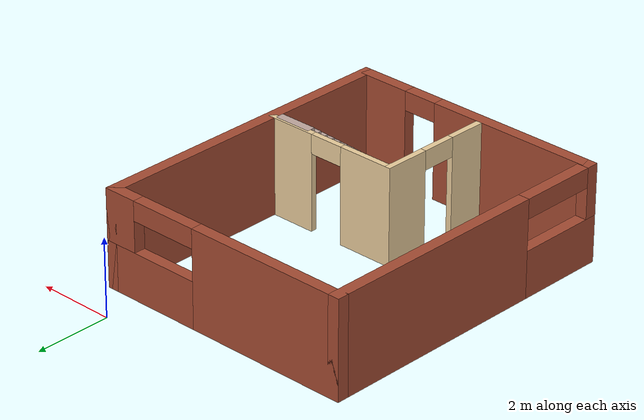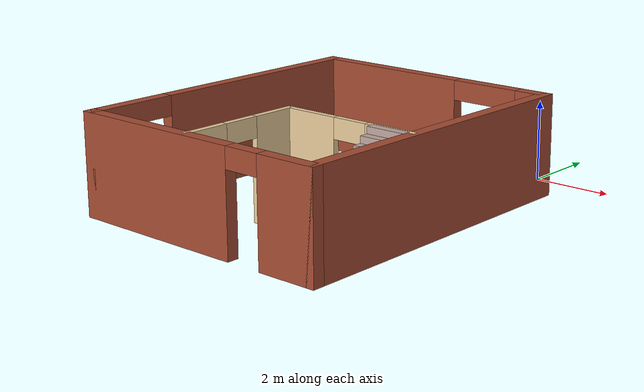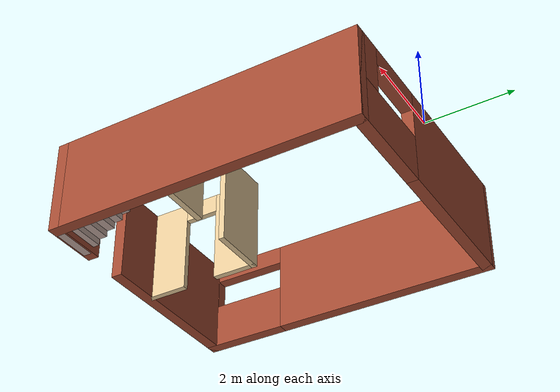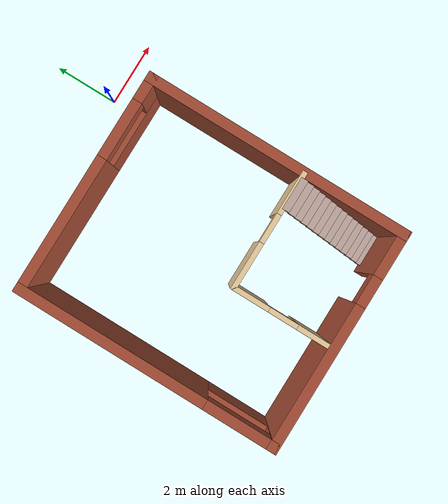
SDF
<?xml version='1.0'?>
<sdf version='1.6'>
  <model name='structure'>
    <pose frame=''>-2.54 -5.1115 0 0 -0 0</pose>
    <link name='Stairs_0'>
      <visual name='Stairs_0_Visual_0'>
        <pose frame=''>2.70286 -4.01169 0.083333 0 -0 -3.14159</pose>
        <geometry>
          <box>
            <size>1 0.2182 0.166667</size>
          </box>
        </geometry>
        <material>
          <script>
            <uri>file://media/materials/scripts/gazebo.material</uri>
            <name>Gazebo/Grey</name>
          </script>
          <ambient>0.760784 0.662745 0.627451 1</ambient>
        </material>
        <meta>
          <layer>0</layer>
        </meta>
      </visual>
      <collision name='Stairs_0_Collision_0'>
        <geometry>
          <box>
            <size>1 0.2182 0.166667</size>
          </box>
        </geometry>
        <pose frame=''>2.70286 -4.01169 0.083333 0 -0 -3.14159</pose>
      </collision>
      <visual name='Stairs_0_Visual_1'>
        <pose frame=''>2.70286 -3.79349 0.25 0 -0 -3.14159</pose>
        <geometry>
          <box>
            <size>1 0.2182 0.166667</size>
          </box>
        </geometry>
        <material>
          <script>
            <uri>file://media/materials/scripts/gazebo.material</uri>
            <name>Gazebo/Grey</name>
          </script>
          <ambient>0.760784 0.662745 0.627451 1</ambient>
        </material>
        <meta>
          <layer>0</layer>
        </meta>
      </visual>
      <collision name='Stairs_0_Collision_1'>
        <geometry>
          <box>
            <size>1 0.2182 0.166667</size>
          </box>
        </geometry>
        <pose frame=''>2.70286 -3.79349 0.25 0 -0 -3.14159</pose>
      </collision>
      <visual name='Stairs_0_Visual_2'>
        <pose frame=''>2.70286 -3.57529 0.416667 0 -0 -3.14159</pose>
        <geometry>
          <box>
            <size>1 0.2182 0.166667</size>
          </box>
        </geometry>
        <material>
          <script>
            <uri>file://media/materials/scripts/gazebo.material</uri>
            <name>Gazebo/Grey</name>
          </script>
          <ambient>0.760784 0.662745 0.627451 1</ambient>
        </material>
        <meta>
          <layer>0</layer>
        </meta>
      </visual>
      <collision name='Stairs_0_Collision_2'>
        <geometry>
          <box>
            <size>1 0.2182 0.166667</size>
          </box>
        </geometry>
        <pose frame=''>2.70286 -3.57529 0.416667 0 -0 -3.14159</pose>
      </collision>
      <visual name='Stairs_0_Visual_3'>
        <pose frame=''>2.70286 -3.35709 0.583333 0 -0 -3.14159</pose>
        <geometry>
          <box>
            <size>1 0.2182 0.166667</size>
          </box>
        </geometry>
        <material>
          <script>
            <uri>file://media/materials/scripts/gazebo.material</uri>
            <name>Gazebo/Grey</name>
          </script>
          <ambient>0.760784 0.662745 0.627451 1</ambient>
        </material>
        <meta>
          <layer>0</layer>
        </meta>
      </visual>
      <collision name='Stairs_0_Collision_3'>
        <geometry>
          <box>
            <size>1 0.2182 0.166667</size>
          </box>
        </geometry>
        <pose frame=''>2.70286 -3.35709 0.583333 0 -0 -3.14159</pose>
      </collision>
      <visual name='Stairs_0_Visual_4'>
        <pose frame=''>2.70286 -3.13889 0.75 0 -0 -3.14159</pose>
        <geometry>
          <box>
            <size>1 0.2182 0.166667</size>
          </box>
        </geometry>
        <material>
          <script>
            <uri>file://media/materials/scripts/gazebo.material</uri>
            <name>Gazebo/Grey</name>
          </script>
          <ambient>0.760784 0.662745 0.627451 1</ambient>
        </material>
        <meta>
          <layer>0</layer>
        </meta>
      </visual>
      <collision name='Stairs_0_Collision_4'>
        <geometry>
          <box>
            <size>1 0.2182 0.166667</size>
          </box>
        </geometry>
        <pose frame=''>2.70286 -3.13889 0.75 0 -0 -3.14159</pose>
      </collision>
      <visual name='Stairs_0_Visual_5'>
        <pose frame=''>2.70286 -2.92069 0.916667 0 -0 -3.14159</pose>
        <geometry>
          <box>
            <size>1 0.2182 0.166667</size>
          </box>
        </geometry>
        <material>
          <script>
            <uri>file://media/materials/scripts/gazebo.material</uri>
            <name>Gazebo/Grey</name>
          </script>
          <ambient>0.760784 0.662745 0.627451 1</ambient>
        </material>
        <meta>
          <layer>0</layer>
        </meta>
      </visual>
      <collision name='Stairs_0_Collision_5'>
        <geometry>
          <box>
            <size>1 0.2182 0.166667</size>
          </box>
        </geometry>
        <pose frame=''>2.70286 -2.92069 0.916667 0 -0 -3.14159</pose>
      </collision>
      <visual name='Stairs_0_Visual_6'>
        <pose frame=''>2.70286 -2.70249 1.08333 0 -0 -3.14159</pose>
        <geometry>
          <box>
            <size>1 0.2182 0.166667</size>
          </box>
        </geometry>
        <material>
          <script>
            <uri>file://media/materials/scripts/gazebo.material</uri>
            <name>Gazebo/Grey</name>
          </script>
          <ambient>0.760784 0.662745 0.627451 1</ambient>
        </material>
        <meta>
          <layer>0</layer>
        </meta>
      </visual>
      <collision name='Stairs_0_Collision_6'>
        <geometry>
          <box>
            <size>1 0.2182 0.166667</size>
          </box>
        </geometry>
        <pose frame=''>2.70286 -2.70249 1.08333 0 -0 -3.14159</pose>
      </collision>
      <visual name='Stairs_0_Visual_7'>
        <pose frame=''>2.70286 -2.48429 1.25 0 -0 -3.14159</pose>
        <geometry>
          <box>
            <size>1 0.2182 0.166667</size>
          </box>
        </geometry>
        <material>
          <script>
            <uri>file://media/materials/scripts/gazebo.material</uri>
            <name>Gazebo/Grey</name>
          </script>
          <ambient>0.760784 0.662745 0.627451 1</ambient>
        </material>
        <meta>
          <layer>0</layer>
        </meta>
      </visual>
      <collision name='Stairs_0_Collision_7'>
        <geometry>
          <box>
            <size>1 0.2182 0.166667</size>
          </box>
        </geometry>
        <pose frame=''>2.70286 -2.48429 1.25 0 -0 -3.14159</pose>
      </collision>
      <visual name='Stairs_0_Visual_8'>
        <pose frame=''>2.70286 -2.26609 1.41667 0 -0 -3.14159</pose>
        <geometry>
          <box>
            <size>1 0.2182 0.166667</size>
          </box>
        </geometry>
        <material>
          <script>
            <uri>file://media/materials/scripts/gazebo.material</uri>
            <name>Gazebo/Grey</name>
          </script>
          <ambient>0.760784 0.662745 0.627451 1</ambient>
        </material>
        <meta>
          <layer>0</layer>
        </meta>
      </visual>
      <collision name='Stairs_0_Collision_8'>
        <geometry>
          <box>
            <size>1 0.2182 0.166667</size>
          </box>
        </geometry>
        <pose frame=''>2.70286 -2.26609 1.41667 0 -0 -3.14159</pose>
      </collision>
      <visual name='Stairs_0_Visual_9'>
        <pose frame=''>2.70286 -2.04789 1.58333 0 -0 -3.14159</pose>
        <geometry>
          <box>
            <size>1 0.2182 0.166667</size>
          </box>
        </geometry>
        <material>
          <script>
            <uri>file://media/materials/scripts/gazebo.material</uri>
            <name>Gazebo/Grey</name>
          </script>
          <ambient>0.760784 0.662745 0.627451 1</ambient>
        </material>
        <meta>
          <layer>0</layer>
        </meta>
      </visual>
      <collision name='Stairs_0_Collision_9'>
        <geometry>
          <box>
            <size>1 0.2182 0.166667</size>
          </box>
        </geometry>
        <pose frame=''>2.70286 -2.04789 1.58333 0 -0 -3.14159</pose>
      </collision>
      <visual name='Stairs_0_Visual_10'>
        <pose frame=''>2.70286 -1.82969 1.75 0 -0 -3.14159</pose>
        <geometry>
          <box>
            <size>1 0.2182 0.166667</size>
          </box>
        </geometry>
        <material>
          <script>
            <uri>file://media/materials/scripts/gazebo.material</uri>
            <name>Gazebo/Grey</name>
          </script>
          <ambient>0.760784 0.662745 0.627451 1</ambient>
        </material>
        <meta>
          <layer>0</layer>
        </meta>
      </visual>
      <collision name='Stairs_0_Collision_10'>
        <geometry>
          <box>
            <size>1 0.2182 0.166667</size>
          </box>
        </geometry>
        <pose frame=''>2.70286 -1.82969 1.75 0 -0 -3.14159</pose>
      </collision>
      <visual name='Stairs_0_Visual_11'>
        <pose frame=''>2.70286 -1.61149 1.91667 0 -0 -3.14159</pose>
        <geometry>
          <box>
            <size>1 0.2182 0.166667</size>
          </box>
        </geometry>
        <material>
          <script>
            <uri>file://media/materials/scripts/gazebo.material</uri>
            <name>Gazebo/Grey</name>
          </script>
          <ambient>0.760784 0.662745 0.627451 1</ambient>
        </material>
        <meta>
          <layer>0</layer>
        </meta>
      </visual>
      <collision name='Stairs_0_Collision_11'>
        <geometry>
          <box>
            <size>1 0.2182 0.166667</size>
          </box>
        </geometry>
        <pose frame=''>2.70286 -1.61149 1.91667 0 -0 -3.14159</pose>
      </collision>
      <visual name='Stairs_0_Visual_12'>
        <pose frame=''>2.70286 -1.39329 2.08333 0 -0 -3.14159</pose>
        <geometry>
          <box>
            <size>1 0.2182 0.166667</size>
          </box>
        </geometry>
        <material>
          <script>
            <uri>file://media/materials/scripts/gazebo.material</uri>
            <name>Gazebo/Grey</name>
          </script>
          <ambient>0.760784 0.662745 0.627451 1</ambient>
        </material>
        <meta>
          <layer>0</layer>
        </meta>
      </visual>
      <collision name='Stairs_0_Collision_12'>
        <geometry>
          <box>
            <size>1 0.2182 0.166667</size>
          </box>
        </geometry>
        <pose frame=''>2.70286 -1.39329 2.08333 0 -0 -3.14159</pose>
      </collision>
      <visual name='Stairs_0_Visual_13'>
        <pose frame=''>2.70286 -1.17509 2.25 0 -0 -3.14159</pose>
        <geometry>
          <box>
            <size>1 0.2182 0.166667</size>
          </box>
        </geometry>
        <material>
          <script>
            <uri>file://media/materials/scripts/gazebo.material</uri>
            <name>Gazebo/Grey</name>
          </script>
          <ambient>0.760784 0.662745 0.627451 1</ambient>
        </material>
        <meta>
          <layer>0</layer>
        </meta>
      </visual>
      <collision name='Stairs_0_Collision_13'>
        <geometry>
          <box>
            <size>1 0.2182 0.166667</size>
          </box>
        </geometry>
        <pose frame=''>2.70286 -1.17509 2.25 0 -0 -3.14159</pose>
      </collision>
      <visual name='Stairs_0_Visual_14'>
        <pose frame=''>2.70286 -0.956894 2.41667 0 -0 -3.14159</pose>
        <geometry>
          <box>
            <size>1 0.2182 0.166667</size>
          </box>
        </geometry>
        <material>
          <script>
            <uri>file://media/materials/scripts/gazebo.material</uri>
            <name>Gazebo/Grey</name>
          </script>
          <ambient>0.760784 0.662745 0.627451 1</ambient>
        </material>
        <meta>
          <layer>0</layer>
        </meta>
      </visual>
      <collision name='Stairs_0_Collision_14'>
        <geometry>
          <box>
            <size>1 0.2182 0.166667</size>
          </box>
        </geometry>
        <pose frame=''>2.70286 -0.956894 2.41667 0 -0 -3.14159</pose>
      </collision>
    </link>
    <link name='Wall_0'>
      <pose frame=''>0 4.0085 0 0 -0 0</pose>
      <visual name='Wall_0_Visual_0'>
        <pose frame=''>-1.33829 0 1.25 0 -0 0</pose>
        <geometry>
          <box>
            <size>4.32341 0.3 2.5</size>
          </box>
        </geometry>
        <material>
          <script>
            <uri>file://media/materials/scripts/gazebo.material</uri>
            <name>Gazebo/Bricks</name>
          </script>
          <ambient>1 0.764706 0.305882 1</ambient>
        </material>
        <meta>
          <layer>0</layer>
        </meta>
      </visual>
      <collision name='Wall_0_Collision_0'>
        <geometry>
          <box>
            <size>4.32341 0.3 2.5</size>
          </box>
        </geometry>
        <pose frame=''>-1.33829 0 1.25 0 -0 0</pose>
      </collision>
      <visual name='Wall_0_Visual_1'>
        <pose frame=''>2.16171 0 0.6 0 -0 0</pose>
        <geometry>
          <box>
            <size>2.67659 0.3 1.2</size>
          </box>
        </geometry>
        <material>
          <script>
            <uri>file://media/materials/scripts/gazebo.material</uri>
            <name>Gazebo/Bricks</name>
          </script>
          <ambient>1 0.764706 0.305882 1</ambient>
        </material>
        <meta>
          <layer>0</layer>
        </meta>
      </visual>
      <collision name='Wall_0_Collision_1'>
        <geometry>
          <box>
            <size>2.67659 0.3 1.2</size>
          </box>
        </geometry>
        <pose frame=''>2.16171 0 0.6 0 -0 0</pose>
      </collision>
      <visual name='Wall_0_Visual_2'>
        <pose frame=''>3.06171 0 1.85 0 -0 0</pose>
        <geometry>
          <box>
            <size>0.876586 0.3 1.3</size>
          </box>
        </geometry>
        <material>
          <script>
            <uri>file://media/materials/scripts/gazebo.material</uri>
            <name>Gazebo/Bricks</name>
          </script>
          <ambient>1 0.764706 0.305882 1</ambient>
        </material>
        <meta>
          <layer>0</layer>
        </meta>
      </visual>
      <collision name='Wall_0_Collision_2'>
        <geometry>
          <box>
            <size>0.876586 0.3 1.3</size>
          </box>
        </geometry>
        <pose frame=''>3.06171 0 1.85 0 -0 0</pose>
      </collision>
      <visual name='Wall_0_Visual_3'>
        <pose frame=''>1.72341 0 2.25 0 -0 0</pose>
        <geometry>
          <box>
            <size>1.8 0.3 0.5</size>
          </box>
        </geometry>
        <material>
          <script>
            <uri>file://media/materials/scripts/gazebo.material</uri>
            <name>Gazebo/Bricks</name>
          </script>
          <ambient>1 0.764706 0.305882 1</ambient>
        </material>
        <meta>
          <layer>0</layer>
        </meta>
      </visual>
      <collision name='Wall_0_Collision_3'>
        <geometry>
          <box>
            <size>1.8 0.3 0.5</size>
          </box>
        </geometry>
        <pose frame=''>1.72341 0 2.25 0 -0 0</pose>
      </collision>
    </link>
    <link name='Wall_11'>
      <collision name='Wall_11_Collision'>
        <geometry>
          <box>
            <size>8.317 0.3 2.5</size>
          </box>
        </geometry>
        <pose frame=''>0 0 1.25 0 -0 0</pose>
      </collision>
      <visual name='Wall_11_Visual'>
        <pose frame=''>0 0 1.25 0 -0 0</pose>
        <geometry>
          <box>
            <size>8.317 0.3 2.5</size>
          </box>
        </geometry>
        <material>
          <script>
            <uri>file://media/materials/scripts/gazebo.material</uri>
            <name>Gazebo/Bricks</name>
          </script>
          <ambient>1 0.764706 0.305882 1</ambient>
        </material>
        <meta>
          <layer>0</layer>
        </meta>
      </visual>
      <pose frame=''>3.35 0 0 0 0 -1.5708</pose>
    </link>
    <link name='Wall_13'>
      <pose frame=''>-0.288 -2.4125 0 0 -0 1.5708</pose>
      <visual name='Wall_13_Visual_0'>
        <pose frame=''>-1.04294 0 1.25 0 -0 0</pose>
        <geometry>
          <box>
            <size>1.16413 0.15 2.5</size>
          </box>
        </geometry>
        <material>
          <script>
            <uri>file://media/materials/scripts/gazebo.material</uri>
            <name>Gazebo/Grey</name>
          </script>
          <ambient>0.921569 0.807843 0.615686 1</ambient>
        </material>
        <meta>
          <layer>0</layer>
        </meta>
      </visual>
      <collision name='Wall_13_Collision_0'>
        <geometry>
          <box>
            <size>1.16413 0.15 2.5</size>
          </box>
        </geometry>
        <pose frame=''>-1.04294 0 1.25 0 -0 0</pose>
      </collision>
      <visual name='Wall_13_Visual_1'>
        <pose frame=''>1.03206 0 1.25 0 -0 0</pose>
        <geometry>
          <box>
            <size>1.18587 0.15 2.5</size>
          </box>
        </geometry>
        <material>
          <script>
            <uri>file://media/materials/scripts/gazebo.material</uri>
            <name>Gazebo/Grey</name>
          </script>
          <ambient>0.921569 0.807843 0.615686 1</ambient>
        </material>
        <meta>
          <layer>0</layer>
        </meta>
      </visual>
      <collision name='Wall_13_Collision_1'>
        <geometry>
          <box>
            <size>1.18587 0.15 2.5</size>
          </box>
        </geometry>
        <pose frame=''>1.03206 0 1.25 0 -0 0</pose>
      </collision>
      <visual name='Wall_13_Visual_2'>
        <pose frame=''>-0.010874 0 2.25 0 -0 0</pose>
        <geometry>
          <box>
            <size>0.9 0.15 0.5</size>
          </box>
        </geometry>
        <material>
          <script>
            <uri>file://media/materials/scripts/gazebo.material</uri>
            <name>Gazebo/Grey</name>
          </script>
          <ambient>0.921569 0.807843 0.615686 1</ambient>
        </material>
        <meta>
          <layer>0</layer>
        </meta>
      </visual>
      <collision name='Wall_13_Collision_2'>
        <geometry>
          <box>
            <size>0.9 0.15 0.5</size>
          </box>
        </geometry>
        <pose frame=''>-0.010874 0 2.25 0 -0 0</pose>
      </collision>
    </link>
    <link name='Wall_14'>
      <pose frame=''>1.512 -0.8625 0 0 -0 0</pose>
      <visual name='Wall_14_Visual_0'>
        <pose frame=''>-1.12678 0 1.25 0 -0 0</pose>
        <geometry>
          <box>
            <size>1.49644 0.15 2.5</size>
          </box>
        </geometry>
        <material>
          <script>
            <uri>file://media/materials/scripts/gazebo.material</uri>
            <name>Gazebo/Grey</name>
          </script>
          <ambient>0.921569 0.807843 0.615686 1</ambient>
        </material>
        <meta>
          <layer>0</layer>
        </meta>
      </visual>
      <collision name='Wall_14_Collision_0'>
        <geometry>
          <box>
            <size>1.49644 0.15 2.5</size>
          </box>
        </geometry>
        <pose frame=''>-1.12678 0 1.25 0 -0 0</pose>
      </collision>
      <visual name='Wall_14_Visual_1'>
        <pose frame=''>1.19822 0 1.25 0 -0 0</pose>
        <geometry>
          <box>
            <size>1.35356 0.15 2.5</size>
          </box>
        </geometry>
        <material>
          <script>
            <uri>file://media/materials/scripts/gazebo.material</uri>
            <name>Gazebo/Grey</name>
          </script>
          <ambient>0.921569 0.807843 0.615686 1</ambient>
        </material>
        <meta>
          <layer>0</layer>
        </meta>
      </visual>
      <collision name='Wall_14_Collision_1'>
        <geometry>
          <box>
            <size>1.35356 0.15 2.5</size>
          </box>
        </geometry>
        <pose frame=''>1.19822 0 1.25 0 -0 0</pose>
      </collision>
      <visual name='Wall_14_Visual_2'>
        <pose frame=''>0.071437 0 2.25 0 -0 0</pose>
        <geometry>
          <box>
            <size>0.9 0.15 0.5</size>
          </box>
        </geometry>
        <material>
          <script>
            <uri>file://media/materials/scripts/gazebo.material</uri>
            <name>Gazebo/Grey</name>
          </script>
          <ambient>0.921569 0.807843 0.615686 1</ambient>
        </material>
        <meta>
          <layer>0</layer>
        </meta>
      </visual>
      <collision name='Wall_14_Collision_2'>
        <geometry>
          <box>
            <size>0.9 0.15 0.5</size>
          </box>
        </geometry>
        <pose frame=''>0.071437 0 2.25 0 -0 0</pose>
      </collision>
    </link>
    <link name='Wall_4'>
      <pose frame=''>-3.35 0 0 0 0 -1.5708</pose>
      <visual name='Wall_4_Visual_0'>
        <pose frame=''>-1.15907 0 1.25 0 -0 0</pose>
        <geometry>
          <box>
            <size>5.99886 0.3 2.5</size>
          </box>
        </geometry>
        <material>
          <script>
            <uri>file://media/materials/scripts/gazebo.material</uri>
            <name>Gazebo/Bricks</name>
          </script>
          <ambient>1 0.764706 0.305882 1</ambient>
        </material>
        <meta>
          <layer>0</layer>
        </meta>
      </visual>
      <collision name='Wall_4_Collision_0'>
        <geometry>
          <box>
            <size>5.99886 0.3 2.5</size>
          </box>
        </geometry>
        <pose frame=''>-1.15907 0 1.25 0 -0 0</pose>
      </collision>
      <visual name='Wall_4_Visual_1'>
        <pose frame=''>2.99943 0 0.6 0 -0 0</pose>
        <geometry>
          <box>
            <size>2.31814 0.3 1.2</size>
          </box>
        </geometry>
        <material>
          <script>
            <uri>file://media/materials/scripts/gazebo.material</uri>
            <name>Gazebo/Bricks</name>
          </script>
          <ambient>1 0.764706 0.305882 1</ambient>
        </material>
        <meta>
          <layer>0</layer>
        </meta>
      </visual>
      <collision name='Wall_4_Collision_1'>
        <geometry>
          <box>
            <size>2.31814 0.3 1.2</size>
          </box>
        </geometry>
        <pose frame=''>2.99943 0 0.6 0 -0 0</pose>
      </collision>
      <visual name='Wall_4_Visual_2'>
        <pose frame=''>3.99943 0 1.85 0 -0 0</pose>
        <geometry>
          <box>
            <size>0.318137 0.3 1.3</size>
          </box>
        </geometry>
        <material>
          <script>
            <uri>file://media/materials/scripts/gazebo.material</uri>
            <name>Gazebo/Bricks</name>
          </script>
          <ambient>1 0.764706 0.305882 1</ambient>
        </material>
        <meta>
          <layer>0</layer>
        </meta>
      </visual>
      <collision name='Wall_4_Collision_2'>
        <geometry>
          <box>
            <size>0.318137 0.3 1.3</size>
          </box>
        </geometry>
        <pose frame=''>3.99943 0 1.85 0 -0 0</pose>
      </collision>
      <visual name='Wall_4_Visual_3'>
        <pose frame=''>2.84036 0 2.25 0 -0 0</pose>
        <geometry>
          <box>
            <size>2 0.3 0.5</size>
          </box>
        </geometry>
        <material>
          <script>
            <uri>file://media/materials/scripts/gazebo.material</uri>
            <name>Gazebo/Bricks</name>
          </script>
          <ambient>1 0.764706 0.305882 1</ambient>
        </material>
        <meta>
          <layer>0</layer>
        </meta>
      </visual>
      <collision name='Wall_4_Collision_3'>
        <geometry>
          <box>
            <size>2 0.3 0.5</size>
          </box>
        </geometry>
        <pose frame=''>2.84036 0 2.25 0 -0 0</pose>
      </collision>
    </link>
    <link name='Wall_5'>
      <pose frame=''>0 -4.0085 0 0 -0 0</pose>
      <visual name='Wall_5_Visual_0'>
        <pose frame=''>-1.20949 0 1.25 0 -0 0</pose>
        <geometry>
          <box>
            <size>4.58102 0.3 2.5</size>
          </box>
        </geometry>
        <material>
          <script>
            <uri>file://media/materials/scripts/gazebo.material</uri>
            <name>Gazebo/Bricks</name>
          </script>
          <ambient>1 0.764706 0.305882 1</ambient>
        </material>
        <meta>
          <layer>0</layer>
        </meta>
      </visual>
      <collision name='Wall_5_Collision_0'>
        <geometry>
          <box>
            <size>4.58102 0.3 2.5</size>
          </box>
        </geometry>
        <pose frame=''>-1.20949 0 1.25 0 -0 0</pose>
      </collision>
      <visual name='Wall_5_Visual_1'>
        <pose frame=''>2.74051 0 1.25 0 -0 0</pose>
        <geometry>
          <box>
            <size>1.51898 0.3 2.5</size>
          </box>
        </geometry>
        <material>
          <script>
            <uri>file://media/materials/scripts/gazebo.material</uri>
            <name>Gazebo/Bricks</name>
          </script>
          <ambient>1 0.764706 0.305882 1</ambient>
        </material>
        <meta>
          <layer>0</layer>
        </meta>
      </visual>
      <collision name='Wall_5_Collision_1'>
        <geometry>
          <box>
            <size>1.51898 0.3 2.5</size>
          </box>
        </geometry>
        <pose frame=''>2.74051 0 1.25 0 -0 0</pose>
      </collision>
      <visual name='Wall_5_Visual_2'>
        <pose frame=''>1.53102 0 2.25 0 -0 0</pose>
        <geometry>
          <box>
            <size>0.9 0.3 0.5</size>
          </box>
        </geometry>
        <material>
          <script>
            <uri>file://media/materials/scripts/gazebo.material</uri>
            <name>Gazebo/Bricks</name>
          </script>
          <ambient>1 0.764706 0.305882 1</ambient>
        </material>
        <meta>
          <layer>0</layer>
        </meta>
      </visual>
      <collision name='Wall_5_Collision_2'>
        <geometry>
          <box>
            <size>0.9 0.3 0.5</size>
          </box>
        </geometry>
        <pose frame=''>1.53102 0 2.25 0 -0 0</pose>
      </collision>
    </link>
    <static>1</static>
  </model>
</sdf>
